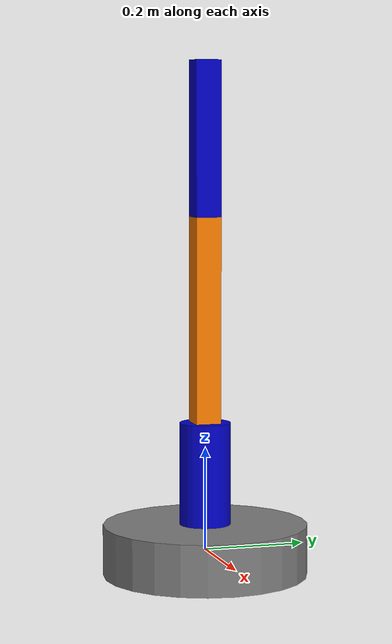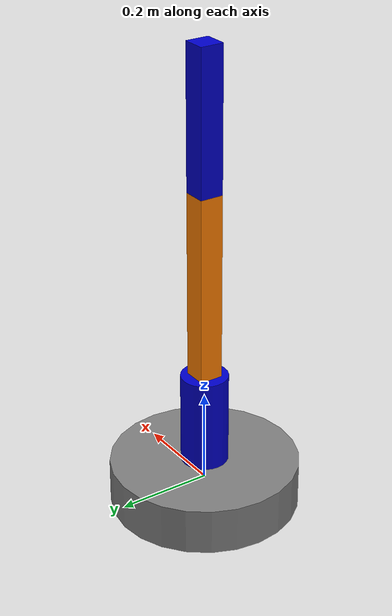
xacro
<?xml version="1.0"?>
<robot xmlns:xacro="http://www.ros.org/wiki/xacro" name="manipulator">

<material name="blue">
<color rgba="0 0 0.8 1"/>
</material>
<material name="grey">
<color rgba="0.5 0.5 0.5 1"/>
</material>
<material name="orange">
<color rgba="1.0 0.5 0 1"/>
</material>
<link name="base_footprint"/>
<joint name="virtual_joint" type="fixed">
<parent link="base_footprint"/>
<child link="base_link"/>
<origin xyz="0 0 0" rpy="0 0 0"/>
</joint>
<link name="base_link">
<visual>
<geometry>
<cylinder radius="0.2" length="0.1"/>
</geometry>
<material name="grey"/>
</visual>
</link>
<joint name="joint_1" type="revolute">
<parent link="base_link"/>
<child link="link_1"/>
<origin xyz="0 0 0.05" rpy="0 0 0"/>
<axis xyz="0 0 1"/>
<limit lower="-3.14" upper="3.14" effort="10" velocity="1.0"/>
</joint>
<link name="link_1">
<visual>
<geometry>
<cylinder radius="0.05" length="0.2"/>
</geometry>
<origin xyz="0 0 0.1" rpy="0 0 0"/>
<material name="blue"/>
</visual>
</link>
<joint name="joint_2" type="revolute">
<parent link="link_1"/>
<child link="link_2"/>
<origin xyz="0 0 0.2" rpy="0 0 0"/>
<axis xyz="0 1 0"/>
<limit lower="-1.57" upper="1.57" effort="10" velocity="1.0"/>
</joint>
<link name="link_2">
<visual>
<geometry>
<box size="0.05 0.05 0.4"/>
</geometry>
<origin xyz="0 0 0.2" rpy="0 0 0"/>
<material name="orange"/>
</visual>
</link>
<joint name="joint_3" type="revolute">
<parent link="link_2"/>
<child link="link_3"/>
<origin xyz="0 0 0.4" rpy="0 0 0"/>
<axis xyz="0 1 0"/>
<limit lower="-1.57" upper="1.57" effort="10" velocity="1.0"/>
</joint>
<link name="link_3">
<visual>
<geometry>
<box size="0.05 0.05 0.3"/>
</geometry>
<origin xyz="0 0 0.15" rpy="0 0 0"/>
<material name="blue"/>
</visual>
</link>
</robot>
